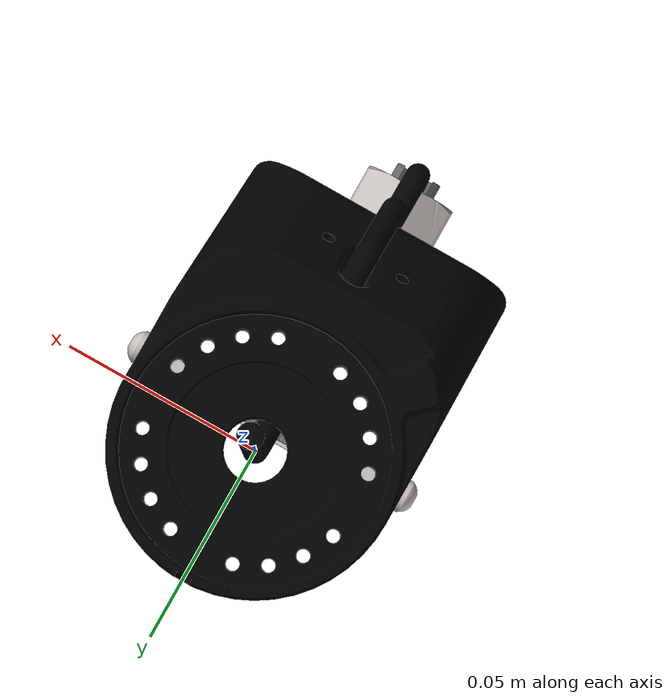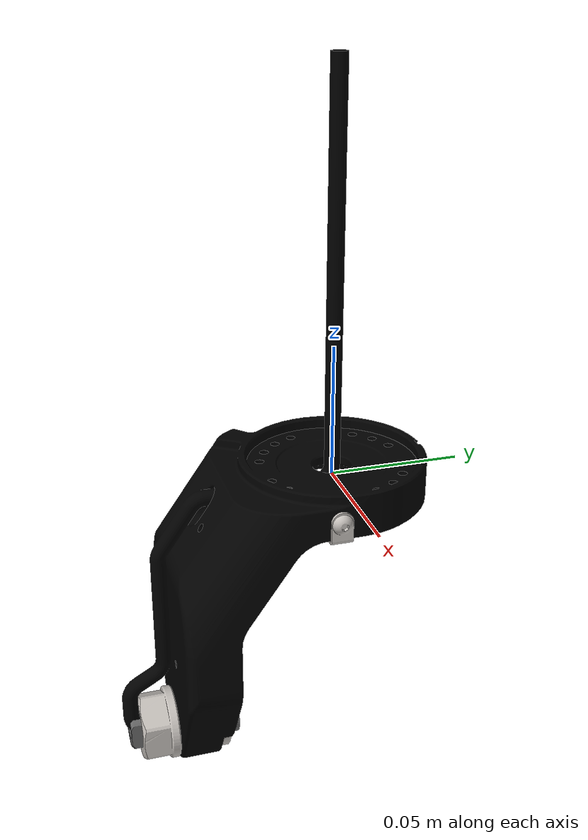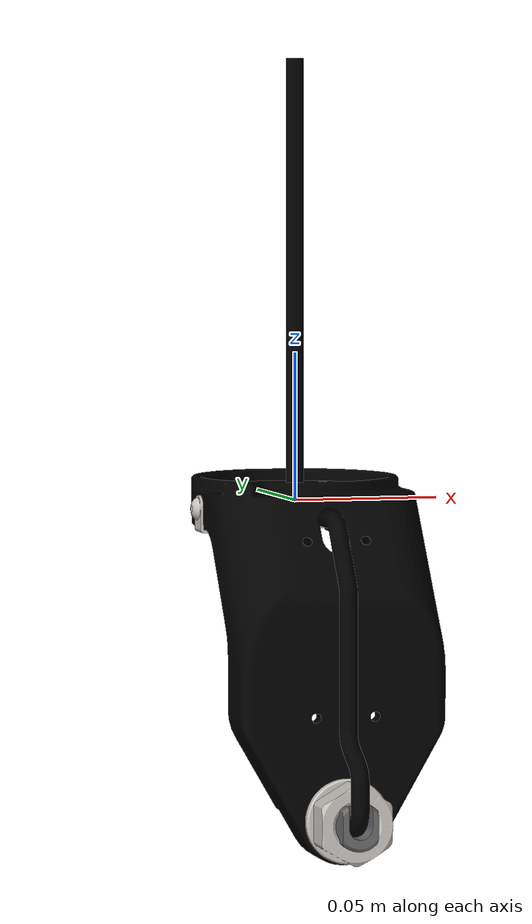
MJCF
<mujoco model="wheel_l1">
  <default>
    <default class="visual">
      <geom group="2" type="mesh" contype="0" conaffinity="0"/>
    </default>
    <default class="collision">
      <geom group="3" type="mesh"/>
    </default>
  </default>
  <asset>
    <material name="material_0" specular="0.4000000000000001" shininess="0.001" rgba="0.40000000 0.40000000 0.40000000 1.0"/>
    <material name="material_1" specular="0.4000000000000001" shininess="0.001" rgba="0.77254902 0.75294118 0.73333333 1.0"/>
    <material name="material_2" specular="0.4000000000000001" shininess="0.001" rgba="0.00000000 0.00000000 0.00000000 1.0"/>
    <material name="material_3" specular="0.4000000000000001" shininess="0.001" rgba="0.74901961 1.00000000 0.74901961 1.0"/>
    <material name="material_4" specular="0.4000000000000001" shininess="0.001" rgba="0.79215686 0.81960784 0.92941176 1.0"/>
    <material name="material_5" specular="0.4000000000000001" shininess="0.001" rgba="1.00000000 1.00000000 0.50196078 1.0"/>
    <mesh file="wheel_l1_0.obj"/>
    <mesh file="wheel_l1_1.obj"/>
    <mesh file="wheel_l1_2.obj"/>
    <mesh file="wheel_l1_3.obj"/>
    <mesh file="wheel_l1_4.obj"/>
    <mesh file="wheel_l1_5.obj"/>
  </asset>
  <worldbody>
    <body name="wheel_l1">
      <geom mesh="wheel_l1_0" material="material_5" class="visual"/>
      <geom mesh="wheel_l1_1" material="material_4" class="visual"/>
      <geom mesh="wheel_l1_2" material="material_3" class="visual"/>
      <geom mesh="wheel_l1_3" material="material_2" class="visual"/>
      <geom mesh="wheel_l1_4" material="material_1" class="visual"/>
      <geom mesh="wheel_l1_5" material="material_0" class="visual"/>
    </body>
  </worldbody>
</mujoco>
